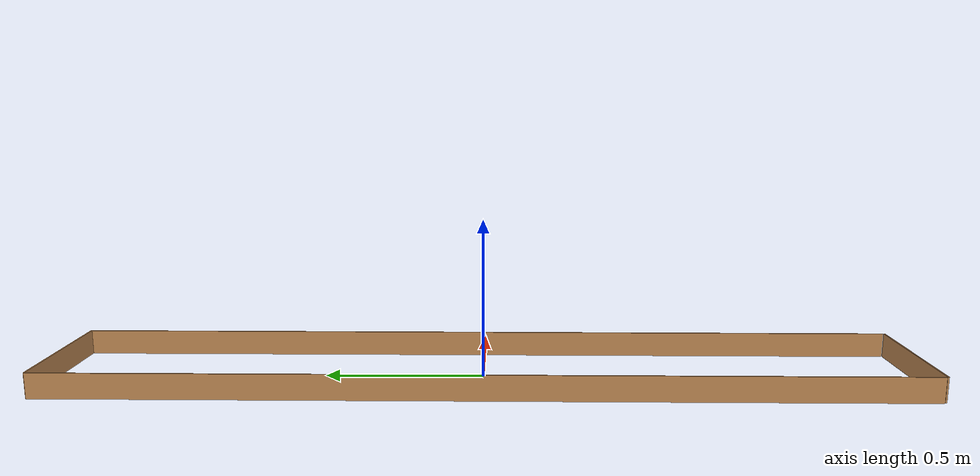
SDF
<?xml version="1.0" ?>
<sdf version="1.5">
  <model name="around_belt">
    <static>true</static>
    <link name="link">
      <collision name="surface_0">
        <pose>0.251 0 0.04 0 0 0</pose>
        <geometry>
          <box>
            <size>0.005 2.7 0.08</size>
          </box>
        </geometry>
        <surface>
          <friction>
            <ode>
              <mu>0.6</mu>
              <mu2>0.6</mu2>
            </ode>
          </friction>
        </surface>
      </collision>
      <visual name="visual0">
        <pose>0.251 0 0.04 0 0 0</pose>
        <geometry>
          <box>
            <size>0.005 2.7 0.08</size>
          </box>
        </geometry>
        <material>
          <script>
            <uri>file://media/materials/scripts/gazebo.material</uri>
            <name>Gazebo/Wood</name>
          </script>
        </material>
      </visual>
      <collision name="surface_1">
        <pose>-0.251 0 0.04 0 0 0</pose>
        <geometry>
          <box>
            <size>0.005 2.7 0.08</size>
          </box>
        </geometry>
        <surface>
          <friction>
            <ode>
              <mu>0.6</mu>
              <mu2>0.6</mu2>
            </ode>
          </friction>
        </surface>
      </collision>
      <visual name="visual1">
        <pose>-0.251 0 0.04 0 0 0</pose>
        <geometry>
          <box>
            <size>0.005 2.7 0.08</size>
          </box>
        </geometry>
        <material>
          <script>
            <uri>file://media/materials/scripts/gazebo.material</uri>
            <name>Gazebo/Wood</name>
          </script>
        </material>
      </visual>
      <collision name="surface_2">
        <pose>0 1.35 0.04 0 0 0</pose>
        <geometry>
          <box>
            <size>0.5 0.005 0.08</size>
          </box>
        </geometry>
        <surface>
          <friction>
            <ode>
              <mu>0.6</mu>
              <mu2>0.6</mu2>
            </ode>
          </friction>
        </surface>
      </collision>
      <visual name="visual2">
        <pose>0 1.35 0.04 0 0 0</pose>
        <geometry>
          <box>
            <size>0.5 0.005 0.08</size>
          </box>
        </geometry>
        <material>
          <script>
            <uri>file://media/materials/scripts/gazebo.material</uri>
            <name>Gazebo/Wood</name>
          </script>
        </material>
      </visual>
      <collision name="surface_3">
        <pose>0 -1.355 0.04 0 0 0</pose>
        <geometry>
          <box>
            <size>0.5 0.005 0.08</size>
          </box>
        </geometry>
        <surface>
          <friction>
            <ode>
              <mu>0.6</mu>
              <mu2>0.6</mu2>
            </ode>
          </friction>
        </surface>
      </collision>
      <visual name="visual3">
        <pose>0 -1.355 0.04 0 0 0</pose>
        <geometry>
          <box>
            <size>0.5 0.005 0.08</size>
          </box>
        </geometry>
        <material>
          <script>
            <uri>file://media/materials/scripts/gazebo.material</uri>
            <name>Gazebo/Wood</name>
          </script>
        </material>
      </visual>
    </link>
  </model>
</sdf>
